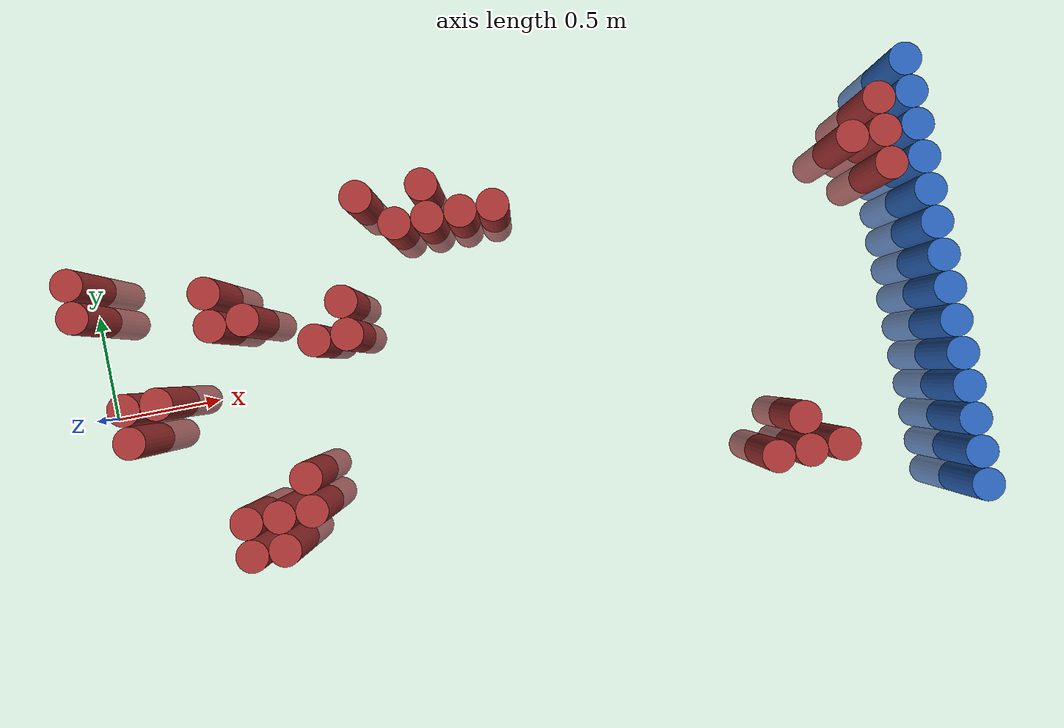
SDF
<sdf version="1.7">
 <world name="default">
  <model name="ground_plane">
   <static>1</static>
   <link name="link">
    <collision name="collision">
     <geometry><plane><normal>0 0 1</normal><size>100 100</size></plane></geometry>
     <surface><friction><ode><mu>100</mu><mu2>50</mu2></ode></friction></surface>
    </collision>
    <visual name="visual">
     <cast_shadows>0</cast_shadows>
     <geometry><plane><normal>0 0 1</normal><size>100 100</size></plane></geometry>
     <material>
      <script><uri>file://media/materials/scripts/gazebo.material</uri><name>Gazebo/Grey</name></script>
     </material>
    </visual>
   </link>
  </model>
  <model name="unit_cylinder_100">
   <static>1</static>
   <pose>3.925 -1.025 0 0 -0 0</pose>
   <link name="link">
    <inertial>
     <mass>1</mass>
     <inertia><ixx>0.145833</ixx><ixy>0</ixy><ixz>0</ixz><iyy>0.145833</iyy><iyz>0</iyz><izz>0.125</izz></inertia>
    </inertial>
    <collision name="collision">
     <geometry><cylinder><radius>0.075</radius><length>1.5</length></cylinder></geometry>
    </collision>
    <visual name="visual">
     <geometry><cylinder><radius>0.075</radius><length>1.5</length></cylinder></geometry>
     <material><ambient>0.152 0.379 0.72 1</ambient><diffuse>0.152 0.379 0.72 1</diffuse></material>
     <material>
      <script><name>Gazebo/Grey</name><uri>file://media/materials/scripts/gazebo.material</uri></script>
     </material>
    </visual>
   </link>
  </model>
  <model name="unit_cylinder_102">
   <static>1</static>
   <pose>3.925 -0.875 0 0 -0 0</pose>
   <link name="link">
    <inertial>
     <mass>1</mass>
     <inertia><ixx>0.145833</ixx><ixy>0</ixy><ixz>0</ixz><iyy>0.145833</iyy><iyz>0</iyz><izz>0.125</izz></inertia>
    </inertial>
    <collision name="collision">
     <geometry><cylinder><radius>0.075</radius><length>1.5</length></cylinder></geometry>
    </collision>
    <visual name="visual">
     <geometry><cylinder><radius>0.075</radius><length>1.5</length></cylinder></geometry>
     <material><ambient>0.152 0.379 0.72 1</ambient><diffuse>0.152 0.379 0.72 1</diffuse></material>
     <material>
      <script><name>Gazebo/Grey</name><uri>file://media/materials/scripts/gazebo.material</uri></script>
     </material>
    </visual>
   </link>
  </model>
  <model name="unit_cylinder_104">
   <static>1</static>
   <pose>3.925 -0.725 0 0 -0 0</pose>
   <link name="link">
    <inertial>
     <mass>1</mass>
     <inertia><ixx>0.145833</ixx><ixy>0</ixy><ixz>0</ixz><iyy>0.145833</iyy><iyz>0</iyz><izz>0.125</izz></inertia>
    </inertial>
    <collision name="collision">
     <geometry><cylinder><radius>0.075</radius><length>1.5</length></cylinder></geometry>
    </collision>
    <visual name="visual">
     <geometry><cylinder><radius>0.075</radius><length>1.5</length></cylinder></geometry>
     <material><ambient>0.152 0.379 0.72 1</ambient><diffuse>0.152 0.379 0.72 1</diffuse></material>
     <material>
      <script><name>Gazebo/Grey</name><uri>file://media/materials/scripts/gazebo.material</uri></script>
     </material>
    </visual>
   </link>
  </model>
  <model name="unit_cylinder_106">
   <static>1</static>
   <pose>3.925 -0.575 0 0 -0 0</pose>
   <link name="link">
    <inertial>
     <mass>1</mass>
     <inertia><ixx>0.145833</ixx><ixy>0</ixy><ixz>0</ixz><iyy>0.145833</iyy><iyz>0</iyz><izz>0.125</izz></inertia>
    </inertial>
    <collision name="collision">
     <geometry><cylinder><radius>0.075</radius><length>1.5</length></cylinder></geometry>
    </collision>
    <visual name="visual">
     <geometry><cylinder><radius>0.075</radius><length>1.5</length></cylinder></geometry>
     <material><ambient>0.152 0.379 0.72 1</ambient><diffuse>0.152 0.379 0.72 1</diffuse></material>
     <material>
      <script><name>Gazebo/Grey</name><uri>file://media/materials/scripts/gazebo.material</uri></script>
     </material>
    </visual>
   </link>
  </model>
  <model name="unit_cylinder_108">
   <static>1</static>
   <pose>3.925 -0.425 0 0 -0 0</pose>
   <link name="link">
    <inertial>
     <mass>1</mass>
     <inertia><ixx>0.145833</ixx><ixy>0</ixy><ixz>0</ixz><iyy>0.145833</iyy><iyz>0</iyz><izz>0.125</izz></inertia>
    </inertial>
    <collision name="collision">
     <geometry><cylinder><radius>0.075</radius><length>1.5</length></cylinder></geometry>
    </collision>
    <visual name="visual">
     <geometry><cylinder><radius>0.075</radius><length>1.5</length></cylinder></geometry>
     <material><ambient>0.152 0.379 0.72 1</ambient><diffuse>0.152 0.379 0.72 1</diffuse></material>
     <material>
      <script><name>Gazebo/Grey</name><uri>file://media/materials/scripts/gazebo.material</uri></script>
     </material>
    </visual>
   </link>
  </model>
  <model name="unit_cylinder_110">
   <static>1</static>
   <pose>3.925 -0.275 0 0 -0 0</pose>
   <link name="link">
    <inertial>
     <mass>1</mass>
     <inertia><ixx>0.145833</ixx><ixy>0</ixy><ixz>0</ixz><iyy>0.145833</iyy><iyz>0</iyz><izz>0.125</izz></inertia>
    </inertial>
    <collision name="collision">
     <geometry><cylinder><radius>0.075</radius><length>1.5</length></cylinder></geometry>
    </collision>
    <visual name="visual">
     <geometry><cylinder><radius>0.075</radius><length>1.5</length></cylinder></geometry>
     <material><ambient>0.152 0.379 0.72 1</ambient><diffuse>0.152 0.379 0.72 1</diffuse></material>
     <material>
      <script><name>Gazebo/Grey</name><uri>file://media/materials/scripts/gazebo.material</uri></script>
     </material>
    </visual>
   </link>
  </model>
  <model name="unit_cylinder_112">
   <static>1</static>
   <pose>3.925 -0.125 0 0 -0 0</pose>
   <link name="link">
    <inertial>
     <mass>1</mass>
     <inertia><ixx>0.145833</ixx><ixy>0</ixy><ixz>0</ixz><iyy>0.145833</iyy><iyz>0</iyz><izz>0.125</izz></inertia>
    </inertial>
    <collision name="collision">
     <geometry><cylinder><radius>0.075</radius><length>1.5</length></cylinder></geometry>
    </collision>
    <visual name="visual">
     <geometry><cylinder><radius>0.075</radius><length>1.5</length></cylinder></geometry>
     <material><ambient>0.152 0.379 0.72 1</ambient><diffuse>0.152 0.379 0.72 1</diffuse></material>
     <material>
      <script><name>Gazebo/Grey</name><uri>file://media/materials/scripts/gazebo.material</uri></script>
     </material>
    </visual>
   </link>
  </model>
  <model name="unit_cylinder_114">
   <static>1</static>
   <pose>3.925 0.025 0 0 -0 0</pose>
   <link name="link">
    <inertial>
     <mass>1</mass>
     <inertia><ixx>0.145833</ixx><ixy>0</ixy><ixz>0</ixz><iyy>0.145833</iyy><iyz>0</iyz><izz>0.125</izz></inertia>
    </inertial>
    <collision name="collision">
     <geometry><cylinder><radius>0.075</radius><length>1.5</length></cylinder></geometry>
    </collision>
    <visual name="visual">
     <geometry><cylinder><radius>0.075</radius><length>1.5</length></cylinder></geometry>
     <material><ambient>0.152 0.379 0.72 1</ambient><diffuse>0.152 0.379 0.72 1</diffuse></material>
     <material>
      <script><name>Gazebo/Grey</name><uri>file://media/materials/scripts/gazebo.material</uri></script>
     </material>
    </visual>
   </link>
  </model>
  <model name="unit_cylinder_116">
   <static>1</static>
   <pose>3.925 0.175 0 0 -0 0</pose>
   <link name="link">
    <inertial>
     <mass>1</mass>
     <inertia><ixx>0.145833</ixx><ixy>0</ixy><ixz>0</ixz><iyy>0.145833</iyy><iyz>0</iyz><izz>0.125</izz></inertia>
    </inertial>
    <collision name="collision">
     <geometry><cylinder><radius>0.075</radius><length>1.5</length></cylinder></geometry>
    </collision>
    <visual name="visual">
     <geometry><cylinder><radius>0.075</radius><length>1.5</length></cylinder></geometry>
     <material><ambient>0.152 0.379 0.72 1</ambient><diffuse>0.152 0.379 0.72 1</diffuse></material>
     <material>
      <script><name>Gazebo/Grey</name><uri>file://media/materials/scripts/gazebo.material</uri></script>
     </material>
    </visual>
   </link>
  </model>
  <model name="unit_cylinder_118">
   <static>1</static>
   <pose>3.925 0.325 0 0 -0 0</pose>
   <link name="link">
    <inertial>
     <mass>1</mass>
     <inertia><ixx>0.145833</ixx><ixy>0</ixy><ixz>0</ixz><iyy>0.145833</iyy><iyz>0</iyz><izz>0.125</izz></inertia>
    </inertial>
    <collision name="collision">
     <geometry><cylinder><radius>0.075</radius><length>1.5</length></cylinder></geometry>
    </collision>
    <visual name="visual">
     <geometry><cylinder><radius>0.075</radius><length>1.5</length></cylinder></geometry>
     <material><ambient>0.152 0.379 0.72 1</ambient><diffuse>0.152 0.379 0.72 1</diffuse></material>
     <material>
      <script><name>Gazebo/Grey</name><uri>file://media/materials/scripts/gazebo.material</uri></script>
     </material>
    </visual>
   </link>
  </model>
  <model name="unit_cylinder_120">
   <static>1</static>
   <pose>3.925 0.475 0 0 -0 0</pose>
   <link name="link">
    <inertial>
     <mass>1</mass>
     <inertia><ixx>0.145833</ixx><ixy>0</ixy><ixz>0</ixz><iyy>0.145833</iyy><iyz>0</iyz><izz>0.125</izz></inertia>
    </inertial>
    <collision name="collision">
     <geometry><cylinder><radius>0.075</radius><length>1.5</length></cylinder></geometry>
    </collision>
    <visual name="visual">
     <geometry><cylinder><radius>0.075</radius><length>1.5</length></cylinder></geometry>
     <material><ambient>0.152 0.379 0.72 1</ambient><diffuse>0.152 0.379 0.72 1</diffuse></material>
     <material>
      <script><name>Gazebo/Grey</name><uri>file://media/materials/scripts/gazebo.material</uri></script>
     </material>
    </visual>
   </link>
  </model>
  <model name="unit_cylinder_122">
   <static>1</static>
   <pose>3.925 0.625 0 0 -0 0</pose>
   <link name="link">
    <inertial>
     <mass>1</mass>
     <inertia><ixx>0.145833</ixx><ixy>0</ixy><ixz>0</ixz><iyy>0.145833</iyy><iyz>0</iyz><izz>0.125</izz></inertia>
    </inertial>
    <collision name="collision">
     <geometry><cylinder><radius>0.075</radius><length>1.5</length></cylinder></geometry>
    </collision>
    <visual name="visual">
     <geometry><cylinder><radius>0.075</radius><length>1.5</length></cylinder></geometry>
     <material><ambient>0.152 0.379 0.72 1</ambient><diffuse>0.152 0.379 0.72 1</diffuse></material>
     <material>
      <script><name>Gazebo/Grey</name><uri>file://media/materials/scripts/gazebo.material</uri></script>
     </material>
    </visual>
   </link>
  </model>
  <model name="unit_cylinder_124">
   <static>1</static>
   <pose>3.925 0.775 0 0 -0 0</pose>
   <link name="link">
    <inertial>
     <mass>1</mass>
     <inertia><ixx>0.145833</ixx><ixy>0</ixy><ixz>0</ixz><iyy>0.145833</iyy><iyz>0</iyz><izz>0.125</izz></inertia>
    </inertial>
    <collision name="collision">
     <geometry><cylinder><radius>0.075</radius><length>1.5</length></cylinder></geometry>
    </collision>
    <visual name="visual">
     <geometry><cylinder><radius>0.075</radius><length>1.5</length></cylinder></geometry>
     <material><ambient>0.152 0.379 0.72 1</ambient><diffuse>0.152 0.379 0.72 1</diffuse></material>
     <material>
      <script><name>Gazebo/Grey</name><uri>file://media/materials/scripts/gazebo.material</uri></script>
     </material>
    </visual>
   </link>
  </model>
  <model name="unit_cylinder_126">
   <static>1</static>
   <pose>3.925 0.925 0 0 -0 0</pose>
   <link name="link">
    <inertial>
     <mass>1</mass>
     <inertia><ixx>0.145833</ixx><ixy>0</ixy><ixz>0</ixz><iyy>0.145833</iyy><iyz>0</iyz><izz>0.125</izz></inertia>
    </inertial>
    <collision name="collision">
     <geometry><cylinder><radius>0.075</radius><length>1.5</length></cylinder></geometry>
    </collision>
    <visual name="visual">
     <geometry><cylinder><radius>0.075</radius><length>1.5</length></cylinder></geometry>
     <material><ambient>0.152 0.379 0.72 1</ambient><diffuse>0.152 0.379 0.72 1</diffuse></material>
     <material>
      <script><name>Gazebo/Grey</name><uri>file://media/materials/scripts/gazebo.material</uri></script>
     </material>
    </visual>
   </link>
  </model>
  <model name="unit_cylinder_361">
   <static>1</static>
   <pose>0.025 0.475 0 0 -0 0</pose>
   <link name="link">
    <inertial>
     <mass>1</mass>
     <inertia><ixx>0.145833</ixx><ixy>0</ixy><ixz>0</ixz><iyy>0.145833</iyy><iyz>0</iyz><izz>0.125</izz></inertia>
    </inertial>
    <collision name="collision">
     <geometry><cylinder><radius>0.075</radius><length>1.5</length></cylinder></geometry>
    </collision>
    <visual name="visual">
     <geometry><cylinder><radius>0.075</radius><length>1.5</length></cylinder></geometry>
     <material><ambient>0.648 0.192 0.192 1</ambient><diffuse>0.648 0.192 0.192 1</diffuse></material>
     <material>
      <script><name>Gazebo/Grey</name><uri>file://media/materials/scripts/gazebo.material</uri></script>
     </material>
    </visual>
   </link>
  </model>
  <model name="unit_cylinder_362">
   <static>1</static>
   <pose>0.025 0.625 0 0 -0 0</pose>
   <link name="link">
    <inertial>
     <mass>1</mass>
     <inertia><ixx>0.145833</ixx><ixy>0</ixy><ixz>0</ixz><iyy>0.145833</iyy><iyz>0</iyz><izz>0.125</izz></inertia>
    </inertial>
    <collision name="collision">
     <geometry><cylinder><radius>0.075</radius><length>1.5</length></cylinder></geometry>
    </collision>
    <visual name="visual">
     <geometry><cylinder><radius>0.075</radius><length>1.5</length></cylinder></geometry>
     <material><ambient>0.648 0.192 0.192 1</ambient><diffuse>0.648 0.192 0.192 1</diffuse></material>
     <material>
      <script><name>Gazebo/Grey</name><uri>file://media/materials/scripts/gazebo.material</uri></script>
     </material>
    </visual>
   </link>
  </model>
  <model name="unit_cylinder_367">
   <static>1</static>
   <pose>0.175 -0.125 0 0 -0 0</pose>
   <link name="link">
    <inertial>
     <mass>1</mass>
     <inertia><ixx>0.145833</ixx><ixy>0</ixy><ixz>0</ixz><iyy>0.145833</iyy><iyz>0</iyz><izz>0.125</izz></inertia>
    </inertial>
    <collision name="collision">
     <geometry><cylinder><radius>0.075</radius><length>1.5</length></cylinder></geometry>
    </collision>
    <visual name="visual">
     <geometry><cylinder><radius>0.075</radius><length>1.5</length></cylinder></geometry>
     <material><ambient>0.648 0.192 0.192 1</ambient><diffuse>0.648 0.192 0.192 1</diffuse></material>
     <material>
      <script><name>Gazebo/Grey</name><uri>file://media/materials/scripts/gazebo.material</uri></script>
     </material>
    </visual>
   </link>
  </model>
  <model name="unit_cylinder_368">
   <static>1</static>
   <pose>0.175 0.025 0 0 -0 0</pose>
   <link name="link">
    <inertial>
     <mass>1</mass>
     <inertia><ixx>0.145833</ixx><ixy>0</ixy><ixz>0</ixz><iyy>0.145833</iyy><iyz>0</iyz><izz>0.125</izz></inertia>
    </inertial>
    <collision name="collision">
     <geometry><cylinder><radius>0.075</radius><length>1.5</length></cylinder></geometry>
    </collision>
    <visual name="visual">
     <geometry><cylinder><radius>0.075</radius><length>1.5</length></cylinder></geometry>
     <material><ambient>0.648 0.192 0.192 1</ambient><diffuse>0.648 0.192 0.192 1</diffuse></material>
     <material>
      <script><name>Gazebo/Grey</name><uri>file://media/materials/scripts/gazebo.material</uri></script>
     </material>
    </visual>
   </link>
  </model>
  <model name="unit_cylinder_373">
   <static>1</static>
   <pose>0.325 0.025 0 0 -0 0</pose>
   <link name="link">
    <inertial>
     <mass>1</mass>
     <inertia><ixx>0.145833</ixx><ixy>0</ixy><ixz>0</ixz><iyy>0.145833</iyy><iyz>0</iyz><izz>0.125</izz></inertia>
    </inertial>
    <collision name="collision">
     <geometry><cylinder><radius>0.075</radius><length>1.5</length></cylinder></geometry>
    </collision>
    <visual name="visual">
     <geometry><cylinder><radius>0.075</radius><length>1.5</length></cylinder></geometry>
     <material><ambient>0.648 0.192 0.192 1</ambient><diffuse>0.648 0.192 0.192 1</diffuse></material>
     <material>
      <script><name>Gazebo/Grey</name><uri>file://media/materials/scripts/gazebo.material</uri></script>
     </material>
    </visual>
   </link>
  </model>
  <model name="unit_cylinder_379">
   <static>1</static>
   <pose>0.625 -0.725 0 0 -0 0</pose>
   <link name="link">
    <inertial>
     <mass>1</mass>
     <inertia><ixx>0.145833</ixx><ixy>0</ixy><ixz>0</ixz><iyy>0.145833</iyy><iyz>0</iyz><izz>0.125</izz></inertia>
    </inertial>
    <collision name="collision">
     <geometry><cylinder><radius>0.075</radius><length>1.5</length></cylinder></geometry>
    </collision>
    <visual name="visual">
     <geometry><cylinder><radius>0.075</radius><length>1.5</length></cylinder></geometry>
     <material><ambient>0.648 0.192 0.192 1</ambient><diffuse>0.648 0.192 0.192 1</diffuse></material>
     <material>
      <script><name>Gazebo/Grey</name><uri>file://media/materials/scripts/gazebo.material</uri></script>
     </material>
    </visual>
   </link>
  </model>
  <model name="unit_cylinder_380">
   <static>1</static>
   <pose>0.625 -0.575 0 0 -0 0</pose>
   <link name="link">
    <inertial>
     <mass>1</mass>
     <inertia><ixx>0.145833</ixx><ixy>0</ixy><ixz>0</ixz><iyy>0.145833</iyy><iyz>0</iyz><izz>0.125</izz></inertia>
    </inertial>
    <collision name="collision">
     <geometry><cylinder><radius>0.075</radius><length>1.5</length></cylinder></geometry>
    </collision>
    <visual name="visual">
     <geometry><cylinder><radius>0.075</radius><length>1.5</length></cylinder></geometry>
     <material><ambient>0.648 0.192 0.192 1</ambient><diffuse>0.648 0.192 0.192 1</diffuse></material>
     <material>
      <script><name>Gazebo/Grey</name><uri>file://media/materials/scripts/gazebo.material</uri></script>
     </material>
    </visual>
   </link>
  </model>
  <model name="unit_cylinder_381">
   <static>1</static>
   <pose>0.625 0.325 0 0 -0 0</pose>
   <link name="link">
    <inertial>
     <mass>1</mass>
     <inertia><ixx>0.145833</ixx><ixy>0</ixy><ixz>0</ixz><iyy>0.145833</iyy><iyz>0</iyz><izz>0.125</izz></inertia>
    </inertial>
    <collision name="collision">
     <geometry><cylinder><radius>0.075</radius><length>1.5</length></cylinder></geometry>
    </collision>
    <visual name="visual">
     <geometry><cylinder><radius>0.075</radius><length>1.5</length></cylinder></geometry>
     <material><ambient>0.648 0.192 0.192 1</ambient><diffuse>0.648 0.192 0.192 1</diffuse></material>
     <material>
      <script><name>Gazebo/Grey</name><uri>file://media/materials/scripts/gazebo.material</uri></script>
     </material>
    </visual>
   </link>
  </model>
  <model name="unit_cylinder_382">
   <static>1</static>
   <pose>0.625 0.475 0 0 -0 0</pose>
   <link name="link">
    <inertial>
     <mass>1</mass>
     <inertia><ixx>0.145833</ixx><ixy>0</ixy><ixz>0</ixz><iyy>0.145833</iyy><iyz>0</iyz><izz>0.125</izz></inertia>
    </inertial>
    <collision name="collision">
     <geometry><cylinder><radius>0.075</radius><length>1.5</length></cylinder></geometry>
    </collision>
    <visual name="visual">
     <geometry><cylinder><radius>0.075</radius><length>1.5</length></cylinder></geometry>
     <material><ambient>0.648 0.192 0.192 1</ambient><diffuse>0.648 0.192 0.192 1</diffuse></material>
     <material>
      <script><name>Gazebo/Grey</name><uri>file://media/materials/scripts/gazebo.material</uri></script>
     </material>
    </visual>
   </link>
  </model>
  <model name="unit_cylinder_384">
   <static>1</static>
   <pose>0.775 -0.725 0 0 -0 0</pose>
   <link name="link">
    <inertial>
     <mass>1</mass>
     <inertia><ixx>0.145833</ixx><ixy>0</ixy><ixz>0</ixz><iyy>0.145833</iyy><iyz>0</iyz><izz>0.125</izz></inertia>
    </inertial>
    <collision name="collision">
     <geometry><cylinder><radius>0.075</radius><length>1.5</length></cylinder></geometry>
    </collision>
    <visual name="visual">
     <geometry><cylinder><radius>0.075</radius><length>1.5</length></cylinder></geometry>
     <material><ambient>0.648 0.192 0.192 1</ambient><diffuse>0.648 0.192 0.192 1</diffuse></material>
     <material>
      <script><name>Gazebo/Grey</name><uri>file://media/materials/scripts/gazebo.material</uri></script>
     </material>
    </visual>
   </link>
  </model>
  <model name="unit_cylinder_385">
   <static>1</static>
   <pose>0.775 -0.575 0 0 -0 0</pose>
   <link name="link">
    <inertial>
     <mass>1</mass>
     <inertia><ixx>0.145833</ixx><ixy>0</ixy><ixz>0</ixz><iyy>0.145833</iyy><iyz>0</iyz><izz>0.125</izz></inertia>
    </inertial>
    <collision name="collision">
     <geometry><cylinder><radius>0.075</radius><length>1.5</length></cylinder></geometry>
    </collision>
    <visual name="visual">
     <geometry><cylinder><radius>0.075</radius><length>1.5</length></cylinder></geometry>
     <material><ambient>0.648 0.192 0.192 1</ambient><diffuse>0.648 0.192 0.192 1</diffuse></material>
     <material>
      <script><name>Gazebo/Grey</name><uri>file://media/materials/scripts/gazebo.material</uri></script>
     </material>
    </visual>
   </link>
  </model>
  <model name="unit_cylinder_386">
   <static>1</static>
   <pose>0.775 0.325 0 0 -0 0</pose>
   <link name="link">
    <inertial>
     <mass>1</mass>
     <inertia><ixx>0.145833</ixx><ixy>0</ixy><ixz>0</ixz><iyy>0.145833</iyy><iyz>0</iyz><izz>0.125</izz></inertia>
    </inertial>
    <collision name="collision">
     <geometry><cylinder><radius>0.075</radius><length>1.5</length></cylinder></geometry>
    </collision>
    <visual name="visual">
     <geometry><cylinder><radius>0.075</radius><length>1.5</length></cylinder></geometry>
     <material><ambient>0.648 0.192 0.192 1</ambient><diffuse>0.648 0.192 0.192 1</diffuse></material>
     <material>
      <script><name>Gazebo/Grey</name><uri>file://media/materials/scripts/gazebo.material</uri></script>
     </material>
    </visual>
   </link>
  </model>
  <model name="unit_cylinder_389">
   <static>1</static>
   <pose>0.925 -0.575 0 0 -0 0</pose>
   <link name="link">
    <inertial>
     <mass>1</mass>
     <inertia><ixx>0.145833</ixx><ixy>0</ixy><ixz>0</ixz><iyy>0.145833</iyy><iyz>0</iyz><izz>0.125</izz></inertia>
    </inertial>
    <collision name="collision">
     <geometry><cylinder><radius>0.075</radius><length>1.5</length></cylinder></geometry>
    </collision>
    <visual name="visual">
     <geometry><cylinder><radius>0.075</radius><length>1.5</length></cylinder></geometry>
     <material><ambient>0.648 0.192 0.192 1</ambient><diffuse>0.648 0.192 0.192 1</diffuse></material>
     <material>
      <script><name>Gazebo/Grey</name><uri>file://media/materials/scripts/gazebo.material</uri></script>
     </material>
    </visual>
   </link>
  </model>
  <model name="unit_cylinder_390">
   <static>1</static>
   <pose>0.925 -0.425 0 0 -0 0</pose>
   <link name="link">
    <inertial>
     <mass>1</mass>
     <inertia><ixx>0.145833</ixx><ixy>0</ixy><ixz>0</ixz><iyy>0.145833</iyy><iyz>0</iyz><izz>0.125</izz></inertia>
    </inertial>
    <collision name="collision">
     <geometry><cylinder><radius>0.075</radius><length>1.5</length></cylinder></geometry>
    </collision>
    <visual name="visual">
     <geometry><cylinder><radius>0.075</radius><length>1.5</length></cylinder></geometry>
     <material><ambient>0.648 0.192 0.192 1</ambient><diffuse>0.648 0.192 0.192 1</diffuse></material>
     <material>
      <script><name>Gazebo/Grey</name><uri>file://media/materials/scripts/gazebo.material</uri></script>
     </material>
    </visual>
   </link>
  </model>
  <model name="unit_cylinder_391">
   <static>1</static>
   <pose>1.075 0.175 0 0 -0 0</pose>
   <link name="link">
    <inertial>
     <mass>1</mass>
     <inertia><ixx>0.145833</ixx><ixy>0</ixy><ixz>0</ixz><iyy>0.145833</iyy><iyz>0</iyz><izz>0.125</izz></inertia>
    </inertial>
    <collision name="collision">
     <geometry><cylinder><radius>0.075</radius><length>1.5</length></cylinder></geometry>
    </collision>
    <visual name="visual">
     <geometry><cylinder><radius>0.075</radius><length>1.5</length></cylinder></geometry>
     <material><ambient>0.648 0.192 0.192 1</ambient><diffuse>0.648 0.192 0.192 1</diffuse></material>
     <material>
      <script><name>Gazebo/Grey</name><uri>file://media/materials/scripts/gazebo.material</uri></script>
     </material>
    </visual>
   </link>
  </model>
  <model name="unit_cylinder_392">
   <static>1</static>
   <pose>1.225 0.175 0 0 -0 0</pose>
   <link name="link">
    <inertial>
     <mass>1</mass>
     <inertia><ixx>0.145833</ixx><ixy>0</ixy><ixz>0</ixz><iyy>0.145833</iyy><iyz>0</iyz><izz>0.125</izz></inertia>
    </inertial>
    <collision name="collision">
     <geometry><cylinder><radius>0.075</radius><length>1.5</length></cylinder></geometry>
    </collision>
    <visual name="visual">
     <geometry><cylinder><radius>0.075</radius><length>1.5</length></cylinder></geometry>
     <material><ambient>0.648 0.192 0.192 1</ambient><diffuse>0.648 0.192 0.192 1</diffuse></material>
     <material>
      <script><name>Gazebo/Grey</name><uri>file://media/materials/scripts/gazebo.material</uri></script>
     </material>
    </visual>
   </link>
  </model>
  <model name="unit_cylinder_393">
   <static>1</static>
   <pose>1.225 0.325 0 0 -0 0</pose>
   <link name="link">
    <inertial>
     <mass>1</mass>
     <inertia><ixx>0.145833</ixx><ixy>0</ixy><ixz>0</ixz><iyy>0.145833</iyy><iyz>0</iyz><izz>0.125</izz></inertia>
    </inertial>
    <collision name="collision">
     <geometry><cylinder><radius>0.075</radius><length>1.5</length></cylinder></geometry>
    </collision>
    <visual name="visual">
     <geometry><cylinder><radius>0.075</radius><length>1.5</length></cylinder></geometry>
     <material><ambient>0.648 0.192 0.192 1</ambient><diffuse>0.648 0.192 0.192 1</diffuse></material>
     <material>
      <script><name>Gazebo/Grey</name><uri>file://media/materials/scripts/gazebo.material</uri></script>
     </material>
    </visual>
   </link>
  </model>
  <model name="unit_cylinder_394">
   <static>1</static>
   <pose>1.375 0.775 0 0 -0 0</pose>
   <link name="link">
    <inertial>
     <mass>1</mass>
     <inertia><ixx>0.145833</ixx><ixy>0</ixy><ixz>0</ixz><iyy>0.145833</iyy><iyz>0</iyz><izz>0.125</izz></inertia>
    </inertial>
    <collision name="collision">
     <geometry><cylinder><radius>0.075</radius><length>1.5</length></cylinder></geometry>
    </collision>
    <visual name="visual">
     <geometry><cylinder><radius>0.075</radius><length>1.5</length></cylinder></geometry>
     <material><ambient>0.648 0.192 0.192 1</ambient><diffuse>0.648 0.192 0.192 1</diffuse></material>
     <material>
      <script><name>Gazebo/Grey</name><uri>file://media/materials/scripts/gazebo.material</uri></script>
     </material>
    </visual>
   </link>
  </model>
  <model name="unit_cylinder_395">
   <static>1</static>
   <pose>1.525 0.625 0 0 -0 0</pose>
   <link name="link">
    <inertial>
     <mass>1</mass>
     <inertia><ixx>0.145833</ixx><ixy>0</ixy><ixz>0</ixz><iyy>0.145833</iyy><iyz>0</iyz><izz>0.125</izz></inertia>
    </inertial>
    <collision name="collision">
     <geometry><cylinder><radius>0.075</radius><length>1.5</length></cylinder></geometry>
    </collision>
    <visual name="visual">
     <geometry><cylinder><radius>0.075</radius><length>1.5</length></cylinder></geometry>
     <material><ambient>0.648 0.192 0.192 1</ambient><diffuse>0.648 0.192 0.192 1</diffuse></material>
     <material>
      <script><name>Gazebo/Grey</name><uri>file://media/materials/scripts/gazebo.material</uri></script>
     </material>
    </visual>
   </link>
  </model>
  <model name="unit_cylinder_396">
   <static>1</static>
   <pose>1.675 0.625 0 0 -0 0</pose>
   <link name="link">
    <inertial>
     <mass>1</mass>
     <inertia><ixx>0.145833</ixx><ixy>0</ixy><ixz>0</ixz><iyy>0.145833</iyy><iyz>0</iyz><izz>0.125</izz></inertia>
    </inertial>
    <collision name="collision">
     <geometry><cylinder><radius>0.075</radius><length>1.5</length></cylinder></geometry>
    </collision>
    <visual name="visual">
     <geometry><cylinder><radius>0.075</radius><length>1.5</length></cylinder></geometry>
     <material><ambient>0.648 0.192 0.192 1</ambient><diffuse>0.648 0.192 0.192 1</diffuse></material>
     <material>
      <script><name>Gazebo/Grey</name><uri>file://media/materials/scripts/gazebo.material</uri></script>
     </material>
    </visual>
   </link>
  </model>
  <model name="unit_cylinder_397">
   <static>1</static>
   <pose>1.675 0.775 0 0 -0 0</pose>
   <link name="link">
    <inertial>
     <mass>1</mass>
     <inertia><ixx>0.145833</ixx><ixy>0</ixy><ixz>0</ixz><iyy>0.145833</iyy><iyz>0</iyz><izz>0.125</izz></inertia>
    </inertial>
    <collision name="collision">
     <geometry><cylinder><radius>0.075</radius><length>1.5</length></cylinder></geometry>
    </collision>
    <visual name="visual">
     <geometry><cylinder><radius>0.075</radius><length>1.5</length></cylinder></geometry>
     <material><ambient>0.648 0.192 0.192 1</ambient><diffuse>0.648 0.192 0.192 1</diffuse></material>
     <material>
      <script><name>Gazebo/Grey</name><uri>file://media/materials/scripts/gazebo.material</uri></script>
     </material>
    </visual>
   </link>
  </model>
  <model name="unit_cylinder_398">
   <static>1</static>
   <pose>1.825 0.625 0 0 -0 0</pose>
   <link name="link">
    <inertial>
     <mass>1</mass>
     <inertia><ixx>0.145833</ixx><ixy>0</ixy><ixz>0</ixz><iyy>0.145833</iyy><iyz>0</iyz><izz>0.125</izz></inertia>
    </inertial>
    <collision name="collision">
     <geometry><cylinder><radius>0.075</radius><length>1.5</length></cylinder></geometry>
    </collision>
    <visual name="visual">
     <geometry><cylinder><radius>0.075</radius><length>1.5</length></cylinder></geometry>
     <material><ambient>0.648 0.192 0.192 1</ambient><diffuse>0.648 0.192 0.192 1</diffuse></material>
     <material>
      <script><name>Gazebo/Grey</name><uri>file://media/materials/scripts/gazebo.material</uri></script>
     </material>
    </visual>
   </link>
  </model>
  <model name="unit_cylinder_401">
   <static>1</static>
   <pose>1.975 0.625 0 0 -0 0</pose>
   <link name="link">
    <inertial>
     <mass>1</mass>
     <inertia><ixx>0.145833</ixx><ixy>0</ixy><ixz>0</ixz><iyy>0.145833</iyy><iyz>0</iyz><izz>0.125</izz></inertia>
    </inertial>
    <collision name="collision">
     <geometry><cylinder><radius>0.075</radius><length>1.5</length></cylinder></geometry>
    </collision>
    <visual name="visual">
     <geometry><cylinder><radius>0.075</radius><length>1.5</length></cylinder></geometry>
     <material><ambient>0.648 0.192 0.192 1</ambient><diffuse>0.648 0.192 0.192 1</diffuse></material>
     <material>
      <script><name>Gazebo/Grey</name><uri>file://media/materials/scripts/gazebo.material</uri></script>
     </material>
    </visual>
   </link>
  </model>
  <model name="unit_cylinder_423">
   <static>1</static>
   <pose>3.025 -0.725 0 0 -0 0</pose>
   <link name="link">
    <inertial>
     <mass>1</mass>
     <inertia><ixx>0.145833</ixx><ixy>0</ixy><ixz>0</ixz><iyy>0.145833</iyy><iyz>0</iyz><izz>0.125</izz></inertia>
    </inertial>
    <collision name="collision">
     <geometry><cylinder><radius>0.075</radius><length>1.5</length></cylinder></geometry>
    </collision>
    <visual name="visual">
     <geometry><cylinder><radius>0.075</radius><length>1.5</length></cylinder></geometry>
     <material><ambient>0.648 0.192 0.192 1</ambient><diffuse>0.648 0.192 0.192 1</diffuse></material>
     <material>
      <script><name>Gazebo/Grey</name><uri>file://media/materials/scripts/gazebo.material</uri></script>
     </material>
    </visual>
   </link>
  </model>
  <model name="unit_cylinder_428">
   <static>1</static>
   <pose>3.175 -0.725 0 0 -0 0</pose>
   <link name="link">
    <inertial>
     <mass>1</mass>
     <inertia><ixx>0.145833</ixx><ixy>0</ixy><ixz>0</ixz><iyy>0.145833</iyy><iyz>0</iyz><izz>0.125</izz></inertia>
    </inertial>
    <collision name="collision">
     <geometry><cylinder><radius>0.075</radius><length>1.5</length></cylinder></geometry>
    </collision>
    <visual name="visual">
     <geometry><cylinder><radius>0.075</radius><length>1.5</length></cylinder></geometry>
     <material><ambient>0.648 0.192 0.192 1</ambient><diffuse>0.648 0.192 0.192 1</diffuse></material>
     <material>
      <script><name>Gazebo/Grey</name><uri>file://media/materials/scripts/gazebo.material</uri></script>
     </material>
    </visual>
   </link>
  </model>
  <model name="unit_cylinder_429">
   <static>1</static>
   <pose>3.175 -0.575 0 0 -0 0</pose>
   <link name="link">
    <inertial>
     <mass>1</mass>
     <inertia><ixx>0.145833</ixx><ixy>0</ixy><ixz>0</ixz><iyy>0.145833</iyy><iyz>0</iyz><izz>0.125</izz></inertia>
    </inertial>
    <collision name="collision">
     <geometry><cylinder><radius>0.075</radius><length>1.5</length></cylinder></geometry>
    </collision>
    <visual name="visual">
     <geometry><cylinder><radius>0.075</radius><length>1.5</length></cylinder></geometry>
     <material><ambient>0.648 0.192 0.192 1</ambient><diffuse>0.648 0.192 0.192 1</diffuse></material>
     <material>
      <script><name>Gazebo/Grey</name><uri>file://media/materials/scripts/gazebo.material</uri></script>
     </material>
    </visual>
   </link>
  </model>
  <model name="unit_cylinder_432">
   <static>1</static>
   <pose>3.325 -0.725 0 0 -0 0</pose>
   <link name="link">
    <inertial>
     <mass>1</mass>
     <inertia><ixx>0.145833</ixx><ixy>0</ixy><ixz>0</ixz><iyy>0.145833</iyy><iyz>0</iyz><izz>0.125</izz></inertia>
    </inertial>
    <collision name="collision">
     <geometry><cylinder><radius>0.075</radius><length>1.5</length></cylinder></geometry>
    </collision>
    <visual name="visual">
     <geometry><cylinder><radius>0.075</radius><length>1.5</length></cylinder></geometry>
     <material><ambient>0.648 0.192 0.192 1</ambient><diffuse>0.648 0.192 0.192 1</diffuse></material>
     <material>
      <script><name>Gazebo/Grey</name><uri>file://media/materials/scripts/gazebo.material</uri></script>
     </material>
    </visual>
   </link>
  </model>
  <model name="unit_cylinder_440">
   <static>1</static>
   <pose>3.625 0.625 0 0 -0 0</pose>
   <link name="link">
    <inertial>
     <mass>1</mass>
     <inertia><ixx>0.145833</ixx><ixy>0</ixy><ixz>0</ixz><iyy>0.145833</iyy><iyz>0</iyz><izz>0.125</izz></inertia>
    </inertial>
    <collision name="collision">
     <geometry><cylinder><radius>0.075</radius><length>1.5</length></cylinder></geometry>
    </collision>
    <visual name="visual">
     <geometry><cylinder><radius>0.075</radius><length>1.5</length></cylinder></geometry>
     <material><ambient>0.648 0.192 0.192 1</ambient><diffuse>0.648 0.192 0.192 1</diffuse></material>
     <material>
      <script><name>Gazebo/Grey</name><uri>file://media/materials/scripts/gazebo.material</uri></script>
     </material>
    </visual>
   </link>
  </model>
  <model name="unit_cylinder_445">
   <static>1</static>
   <pose>3.775 0.475 0 0 -0 0</pose>
   <link name="link">
    <inertial>
     <mass>1</mass>
     <inertia><ixx>0.145833</ixx><ixy>0</ixy><ixz>0</ixz><iyy>0.145833</iyy><iyz>0</iyz><izz>0.125</izz></inertia>
    </inertial>
    <collision name="collision">
     <geometry><cylinder><radius>0.075</radius><length>1.5</length></cylinder></geometry>
    </collision>
    <visual name="visual">
     <geometry><cylinder><radius>0.075</radius><length>1.5</length></cylinder></geometry>
     <material><ambient>0.648 0.192 0.192 1</ambient><diffuse>0.648 0.192 0.192 1</diffuse></material>
     <material>
      <script><name>Gazebo/Grey</name><uri>file://media/materials/scripts/gazebo.material</uri></script>
     </material>
    </visual>
   </link>
  </model>
  <model name="unit_cylinder_446">
   <static>1</static>
   <pose>3.775 0.625 0 0 -0 0</pose>
   <link name="link">
    <inertial>
     <mass>1</mass>
     <inertia><ixx>0.145833</ixx><ixy>0</ixy><ixz>0</ixz><iyy>0.145833</iyy><iyz>0</iyz><izz>0.125</izz></inertia>
    </inertial>
    <collision name="collision">
     <geometry><cylinder><radius>0.075</radius><length>1.5</length></cylinder></geometry>
    </collision>
    <visual name="visual">
     <geometry><cylinder><radius>0.075</radius><length>1.5</length></cylinder></geometry>
     <material><ambient>0.648 0.192 0.192 1</ambient><diffuse>0.648 0.192 0.192 1</diffuse></material>
     <material>
      <script><name>Gazebo/Grey</name><uri>file://media/materials/scripts/gazebo.material</uri></script>
     </material>
    </visual>
   </link>
  </model>
  <model name="unit_cylinder_447">
   <static>1</static>
   <pose>3.775 0.775 0 0 -0 0</pose>
   <link name="link">
    <inertial>
     <mass>1</mass>
     <inertia><ixx>0.145833</ixx><ixy>0</ixy><ixz>0</ixz><iyy>0.145833</iyy><iyz>0</iyz><izz>0.125</izz></inertia>
    </inertial>
    <collision name="collision">
     <geometry><cylinder><radius>0.075</radius><length>1.5</length></cylinder></geometry>
    </collision>
    <visual name="visual">
     <geometry><cylinder><radius>0.075</radius><length>1.5</length></cylinder></geometry>
     <material><ambient>0.648 0.192 0.192 1</ambient><diffuse>0.648 0.192 0.192 1</diffuse></material>
     <material>
      <script><name>Gazebo/Grey</name><uri>file://media/materials/scripts/gazebo.material</uri></script>
     </material>
    </visual>
   </link>
  </model>
  <model name="unit_cylinder_468">
   <static>1</static>
   <pose>3.925 -1.025 0 0 -0 0</pose>
   <link name="link">
    <inertial>
     <mass>1</mass>
     <inertia><ixx>0.145833</ixx><ixy>0</ixy><ixz>0</ixz><iyy>0.145833</iyy><iyz>0</iyz><izz>0.125</izz></inertia>
    </inertial>
    <collision name="collision">
     <geometry><cylinder><radius>0.075</radius><length>1.5</length></cylinder></geometry>
    </collision>
    <visual name="visual">
     <geometry><cylinder><radius>0.075</radius><length>1.5</length></cylinder></geometry>
     <material><ambient>0.152 0.379 0.72 1</ambient><diffuse>0.152 0.379 0.72 1</diffuse></material>
     <material>
      <script><name>Gazebo/Grey</name><uri>file://media/materials/scripts/gazebo.material</uri></script>
     </material>
    </visual>
   </link>
  </model>
  <model name="unit_cylinder_469">
   <static>1</static>
   <pose>3.925 -0.875 0 0 -0 0</pose>
   <link name="link">
    <inertial>
     <mass>1</mass>
     <inertia><ixx>0.145833</ixx><ixy>0</ixy><ixz>0</ixz><iyy>0.145833</iyy><iyz>0</iyz><izz>0.125</izz></inertia>
    </inertial>
    <collision name="collision">
     <geometry><cylinder><radius>0.075</radius><length>1.5</length></cylinder></geometry>
    </collision>
    <visual name="visual">
     <geometry><cylinder><radius>0.075</radius><length>1.5</length></cylinder></geometry>
     <material><ambient>0.152 0.379 0.72 1</ambient><diffuse>0.152 0.379 0.72 1</diffuse></material>
     <material>
      <script><name>Gazebo/Grey</name><uri>file://media/materials/scripts/gazebo.material</uri></script>
     </material>
    </visual>
   </link>
  </model>
  <model name="unit_cylinder_470">
   <static>1</static>
   <pose>3.925 -0.725 0 0 -0 0</pose>
   <link name="link">
    <inertial>
     <mass>1</mass>
     <inertia><ixx>0.145833</ixx><ixy>0</ixy><ixz>0</ixz><iyy>0.145833</iyy><iyz>0</iyz><izz>0.125</izz></inertia>
    </inertial>
    <collision name="collision">
     <geometry><cylinder><radius>0.075</radius><length>1.5</length></cylinder></geometry>
    </collision>
    <visual name="visual">
     <geometry><cylinder><radius>0.075</radius><length>1.5</length></cylinder></geometry>
     <material><ambient>0.152 0.379 0.72 1</ambient><diffuse>0.152 0.379 0.72 1</diffuse></material>
     <material>
      <script><name>Gazebo/Grey</name><uri>file://media/materials/scripts/gazebo.material</uri></script>
     </material>
    </visual>
   </link>
  </model>
  <model name="unit_cylinder_471">
   <static>1</static>
   <pose>3.925 -0.575 0 0 -0 0</pose>
   <link name="link">
    <inertial>
     <mass>1</mass>
     <inertia><ixx>0.145833</ixx><ixy>0</ixy><ixz>0</ixz><iyy>0.145833</iyy><iyz>0</iyz><izz>0.125</izz></inertia>
    </inertial>
    <collision name="collision">
     <geometry><cylinder><radius>0.075</radius><length>1.5</length></cylinder></geometry>
    </collision>
    <visual name="visual">
     <geometry><cylinder><radius>0.075</radius><length>1.5</length></cylinder></geometry>
     <material><ambient>0.152 0.379 0.72 1</ambient><diffuse>0.152 0.379 0.72 1</diffuse></material>
     <material>
      <script><name>Gazebo/Grey</name><uri>file://media/materials/scripts/gazebo.material</uri></script>
     </material>
    </visual>
   </link>
  </model>
  <model name="unit_cylinder_472">
   <static>1</static>
   <pose>3.925 -0.425 0 0 -0 0</pose>
   <link name="link">
    <inertial>
     <mass>1</mass>
     <inertia><ixx>0.145833</ixx><ixy>0</ixy><ixz>0</ixz><iyy>0.145833</iyy><iyz>0</iyz><izz>0.125</izz></inertia>
    </inertial>
    <collision name="collision">
     <geometry><cylinder><radius>0.075</radius><length>1.5</length></cylinder></geometry>
    </collision>
    <visual name="visual">
     <geometry><cylinder><radius>0.075</radius><length>1.5</length></cylinder></geometry>
     <material><ambient>0.152 0.379 0.72 1</ambient><diffuse>0.152 0.379 0.72 1</diffuse></material>
     <material>
      <script><name>Gazebo/Grey</name><uri>file://media/materials/scripts/gazebo.material</uri></script>
     </material>
    </visual>
   </link>
  </model>
  <model name="unit_cylinder_473">
   <static>1</static>
   <pose>3.925 -0.275 0 0 -0 0</pose>
   <link name="link">
    <inertial>
     <mass>1</mass>
     <inertia><ixx>0.145833</ixx><ixy>0</ixy><ixz>0</ixz><iyy>0.145833</iyy><iyz>0</iyz><izz>0.125</izz></inertia>
    </inertial>
    <collision name="collision">
     <geometry><cylinder><radius>0.075</radius><length>1.5</length></cylinder></geometry>
    </collision>
    <visual name="visual">
     <geometry><cylinder><radius>0.075</radius><length>1.5</length></cylinder></geometry>
     <material><ambient>0.152 0.379 0.72 1</ambient><diffuse>0.152 0.379 0.72 1</diffuse></material>
     <material>
      <script><name>Gazebo/Grey</name><uri>file://media/materials/scripts/gazebo.material</uri></script>
     </material>
    </visual>
   </link>
  </model>
  <model name="unit_cylinder_474">
   <static>1</static>
   <pose>3.925 -0.125 0 0 -0 0</pose>
   <link name="link">
    <inertial>
     <mass>1</mass>
     <inertia><ixx>0.145833</ixx><ixy>0</ixy><ixz>0</ixz><iyy>0.145833</iyy><iyz>0</iyz><izz>0.125</izz></inertia>
    </inertial>
    <collision name="collision">
     <geometry><cylinder><radius>0.075</radius><length>1.5</length></cylinder></geometry>
    </collision>
    <visual name="visual">
     <geometry><cylinder><radius>0.075</radius><length>1.5</length></cylinder></geometry>
     <material><ambient>0.152 0.379 0.72 1</ambient><diffuse>0.152 0.379 0.72 1</diffuse></material>
     <material>
      <script><name>Gazebo/Grey</name><uri>file://media/materials/scripts/gazebo.material</uri></script>
     </material>
    </visual>
   </link>
  </model>
  <model name="unit_cylinder_475">
   <static>1</static>
   <pose>3.925 0.025 0 0 -0 0</pose>
   <link name="link">
    <inertial>
     <mass>1</mass>
     <inertia><ixx>0.145833</ixx><ixy>0</ixy><ixz>0</ixz><iyy>0.145833</iyy><iyz>0</iyz><izz>0.125</izz></inertia>
    </inertial>
    <collision name="collision">
     <geometry><cylinder><radius>0.075</radius><length>1.5</length></cylinder></geometry>
    </collision>
    <visual name="visual">
     <geometry><cylinder><radius>0.075</radius><length>1.5</length></cylinder></geometry>
     <material><ambient>0.152 0.379 0.72 1</ambient><diffuse>0.152 0.379 0.72 1</diffuse></material>
     <material>
      <script><name>Gazebo/Grey</name><uri>file://media/materials/scripts/gazebo.material</uri></script>
     </material>
    </visual>
   </link>
  </model>
  <model name="unit_cylinder_476">
   <static>1</static>
   <pose>3.925 0.175 0 0 -0 0</pose>
   <link name="link">
    <inertial>
     <mass>1</mass>
     <inertia><ixx>0.145833</ixx><ixy>0</ixy><ixz>0</ixz><iyy>0.145833</iyy><iyz>0</iyz><izz>0.125</izz></inertia>
    </inertial>
    <collision name="collision">
     <geometry><cylinder><radius>0.075</radius><length>1.5</length></cylinder></geometry>
    </collision>
    <visual name="visual">
     <geometry><cylinder><radius>0.075</radius><length>1.5</length></cylinder></geometry>
     <material><ambient>0.152 0.379 0.72 1</ambient><diffuse>0.152 0.379 0.72 1</diffuse></material>
     <material>
      <script><name>Gazebo/Grey</name><uri>file://media/materials/scripts/gazebo.material</uri></script>
     </material>
    </visual>
   </link>
  </model>
  <model name="unit_cylinder_477">
   <static>1</static>
   <pose>3.925 0.325 0 0 -0 0</pose>
   <link name="link">
    <inertial>
     <mass>1</mass>
     <inertia><ixx>0.145833</ixx><ixy>0</ixy><ixz>0</ixz><iyy>0.145833</iyy><iyz>0</iyz><izz>0.125</izz></inertia>
    </inertial>
    <collision name="collision">
     <geometry><cylinder><radius>0.075</radius><length>1.5</length></cylinder></geometry>
    </collision>
    <visual name="visual">
     <geometry><cylinder><radius>0.075</radius><length>1.5</length></cylinder></geometry>
     <material><ambient>0.152 0.379 0.72 1</ambient><diffuse>0.152 0.379 0.72 1</diffuse></material>
     <material>
      <script><name>Gazebo/Grey</name><uri>file://media/materials/scripts/gazebo.material</uri></script>
     </material>
    </visual>
   </link>
  </model>
  <model name="unit_cylinder_478">
   <static>1</static>
   <pose>3.925 0.475 0 0 -0 0</pose>
   <link name="link">
    <inertial>
     <mass>1</mass>
     <inertia><ixx>0.145833</ixx><ixy>0</ixy><ixz>0</ixz><iyy>0.145833</iyy><iyz>0</iyz><izz>0.125</izz></inertia>
    </inertial>
    <collision name="collision">
     <geometry><cylinder><radius>0.075</radius><length>1.5</length></cylinder></geometry>
    </collision>
    <visual name="visual">
     <geometry><cylinder><radius>0.075</radius><length>1.5</length></cylinder></geometry>
     <material><ambient>0.152 0.379 0.72 1</ambient><diffuse>0.152 0.379 0.72 1</diffuse></material>
     <material>
      <script><name>Gazebo/Grey</name><uri>file://media/materials/scripts/gazebo.material</uri></script>
     </material>
    </visual>
   </link>
  </model>
  <model name="unit_cylinder_479">
   <static>1</static>
   <pose>3.925 0.625 0 0 -0 0</pose>
   <link name="link">
    <inertial>
     <mass>1</mass>
     <inertia><ixx>0.145833</ixx><ixy>0</ixy><ixz>0</ixz><iyy>0.145833</iyy><iyz>0</iyz><izz>0.125</izz></inertia>
    </inertial>
    <collision name="collision">
     <geometry><cylinder><radius>0.075</radius><length>1.5</length></cylinder></geometry>
    </collision>
    <visual name="visual">
     <geometry><cylinder><radius>0.075</radius><length>1.5</length></cylinder></geometry>
     <material><ambient>0.152 0.379 0.72 1</ambient><diffuse>0.152 0.379 0.72 1</diffuse></material>
     <material>
      <script><name>Gazebo/Grey</name><uri>file://media/materials/scripts/gazebo.material</uri></script>
     </material>
    </visual>
   </link>
  </model>
  <model name="unit_cylinder_480">
   <static>1</static>
   <pose>3.925 0.775 0 0 -0 0</pose>
   <link name="link">
    <inertial>
     <mass>1</mass>
     <inertia><ixx>0.145833</ixx><ixy>0</ixy><ixz>0</ixz><iyy>0.145833</iyy><iyz>0</iyz><izz>0.125</izz></inertia>
    </inertial>
    <collision name="collision">
     <geometry><cylinder><radius>0.075</radius><length>1.5</length></cylinder></geometry>
    </collision>
    <visual name="visual">
     <geometry><cylinder><radius>0.075</radius><length>1.5</length></cylinder></geometry>
     <material><ambient>0.152 0.379 0.72 1</ambient><diffuse>0.152 0.379 0.72 1</diffuse></material>
     <material>
      <script><name>Gazebo/Grey</name><uri>file://media/materials/scripts/gazebo.material</uri></script>
     </material>
    </visual>
   </link>
  </model>
 </world>
</sdf>
